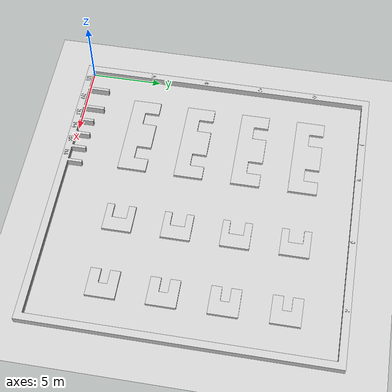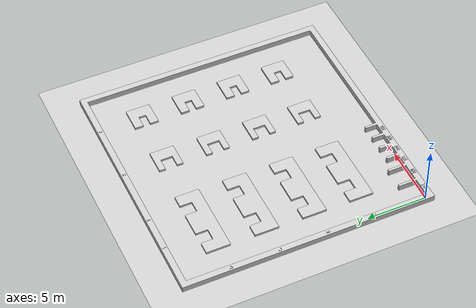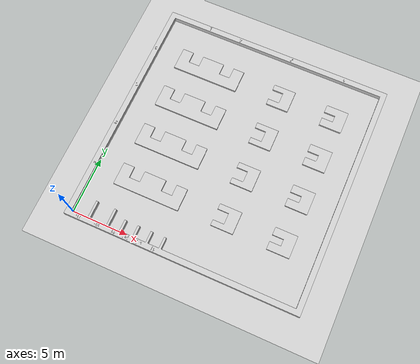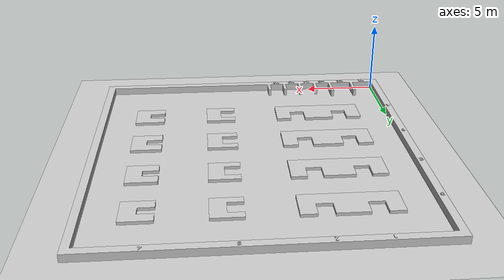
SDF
<sdf version="1.10">
 <world name="simple_world">
  <physics name="1ms" type="ignored">
   <max_step_size>0.005</max_step_size>
   <real_time_factor>1</real_time_factor>
   <real_time_update_rate>200</real_time_update_rate>
  </physics>
  <plugin name="gz::sim::systems::Physics" filename="gz-sim-physics-system"/>
  <plugin name="gz::sim::systems::UserCommands" filename="gz-sim-user-commands-system"/>
  <plugin name="gz::sim::systems::SceneBroadcaster" filename="gz-sim-scene-broadcaster-system"/>
  <plugin name="gz::sim::systems::Imu" filename="gz-sim-imu-system"/>
  <plugin name="gz::sim::systems::Sensors" filename="gz-sim-sensors-system">
   <render_engine>ogre2</render_engine>
  </plugin>
  <gravity>0 0 -9.8000000000000007</gravity>
  <magnetic_field>6.0000000000000002e-06 2.3e-05 -4.1999999999999998e-05</magnetic_field>
  <atmosphere type="adiabatic"/>
  <physics type="ode">
   <max_step_size>0.005</max_step_size>
   <real_time_factor>1</real_time_factor>
   <real_time_update_rate>200</real_time_update_rate>
  </physics>
  <scene>
   <ambient>0.400000006 0.400000006 0.400000006 1</ambient>
   <background>0.699999988 0.699999988 0.699999988 1</background>
   <shadows>true</shadows>
  </scene>
  <spherical_coordinates>
   <surface_model>EARTH_WGS84</surface_model>
   <latitude_deg>0</latitude_deg>
   <longitude_deg>0</longitude_deg>
   <elevation>0</elevation>
   <heading_deg>0</heading_deg>
  </spherical_coordinates>
  <model name="ground_plane">
   <static>true</static>
   <link name="link">
    <collision name="collision">
     <geometry><plane><normal>0 0 1</normal><size>100 100</size></plane></geometry>
     <surface><friction><ode><mu>100</mu><mu2>50</mu2></ode></friction></surface>
    </collision>
    <visual name="visual">
     <cast_shadows>false</cast_shadows>
     <geometry><plane><normal>0 0 1</normal><size>100 100</size></plane></geometry>
     <material>
      <script><uri>file://media/materials/scripts/gazebo.material</uri><name>Gazebo/Grey</name></script>
     </material>
    </visual>
    <inertial>
     <mass>1</mass>
     <inertia><ixx>1</ixx><ixy>0</ixy><ixz>0</ixz><iyy>1</iyy><iyz>0</iyz><izz>1</izz></inertia>
    </inertial>
   </link>
  </model>
  <model name="Warehouse">
   <link name="link">
    <visual name="visual">
     <geometry><mesh><uri>package://swerve_robot/meshes/World_4.STL</uri></mesh></geometry>
     <material>
      <ambient>0.8 0.8 0.8 1</ambient>
      <diffuse>0.8 0.8 0.8 1</diffuse>
      <specular>0.2 0.2 0.2 1</specular>
      <emissive>0 0 0 1</emissive>
     </material>
    </visual>
    <collision name="collision">
     <geometry><mesh><uri>package://swerve_robot/meshes/World_4.STL</uri></mesh></geometry>
    </collision>
    <inertial>
     <mass>1</mass>
     <inertia><ixx>1</ixx><ixy>0</ixy><ixz>0</ixz><iyy>1</iyy><iyz>0</iyz><izz>1</izz></inertia>
    </inertial>
   </link>
   <static>true</static>
  </model>
  <light name="sun" type="directional">
   <pose>0 0 10 0 0 0</pose>
   <intensity>1</intensity>
   <direction>-0.5 0.10000000000000001 -0.90000000000000002</direction>
   <diffuse>0.800000012 0.800000012 0.800000012 1</diffuse>
   <specular>0.200000003 0.200000003 0.200000003 1</specular>
   <attenuation>
    <range>1000</range>
    <linear>0.01</linear>
    <constant>0.90000000000000002</constant>
    <quadratic>0.001</quadratic>
   </attenuation>
   <spot><inner_angle>0</inner_angle><outer_angle>0</outer_angle><falloff>0</falloff></spot>
  </light>
 </world>
</sdf>
